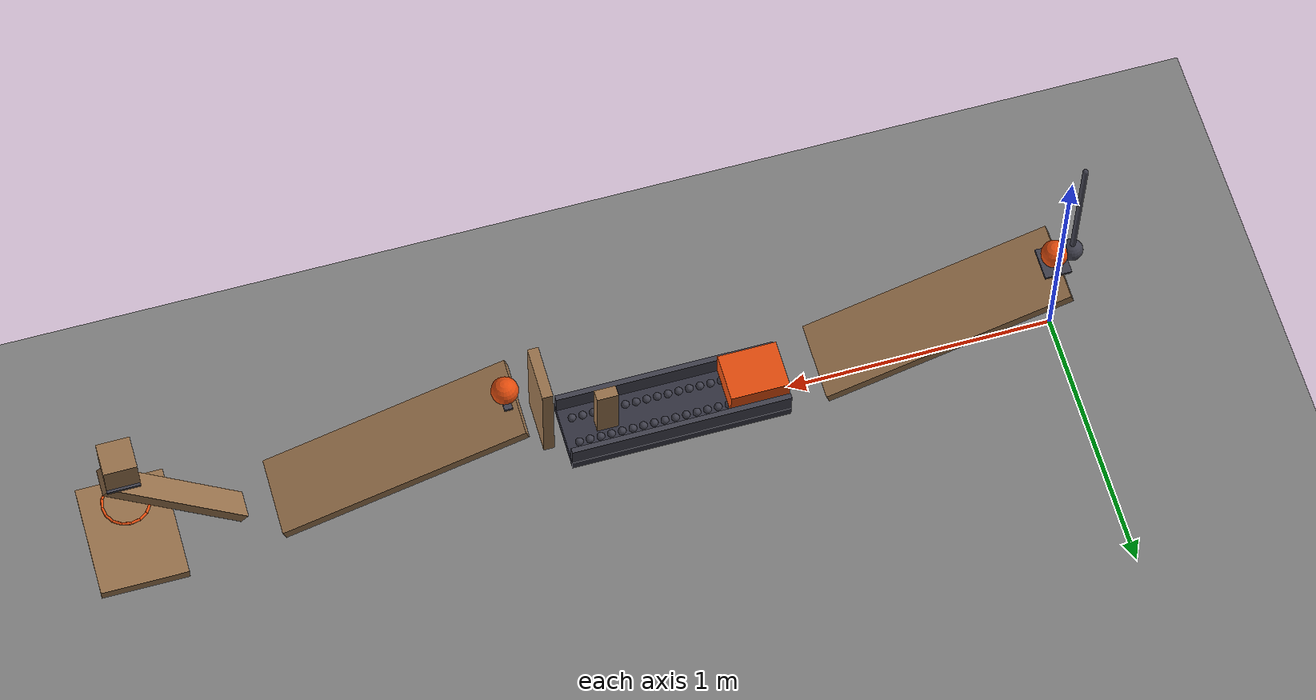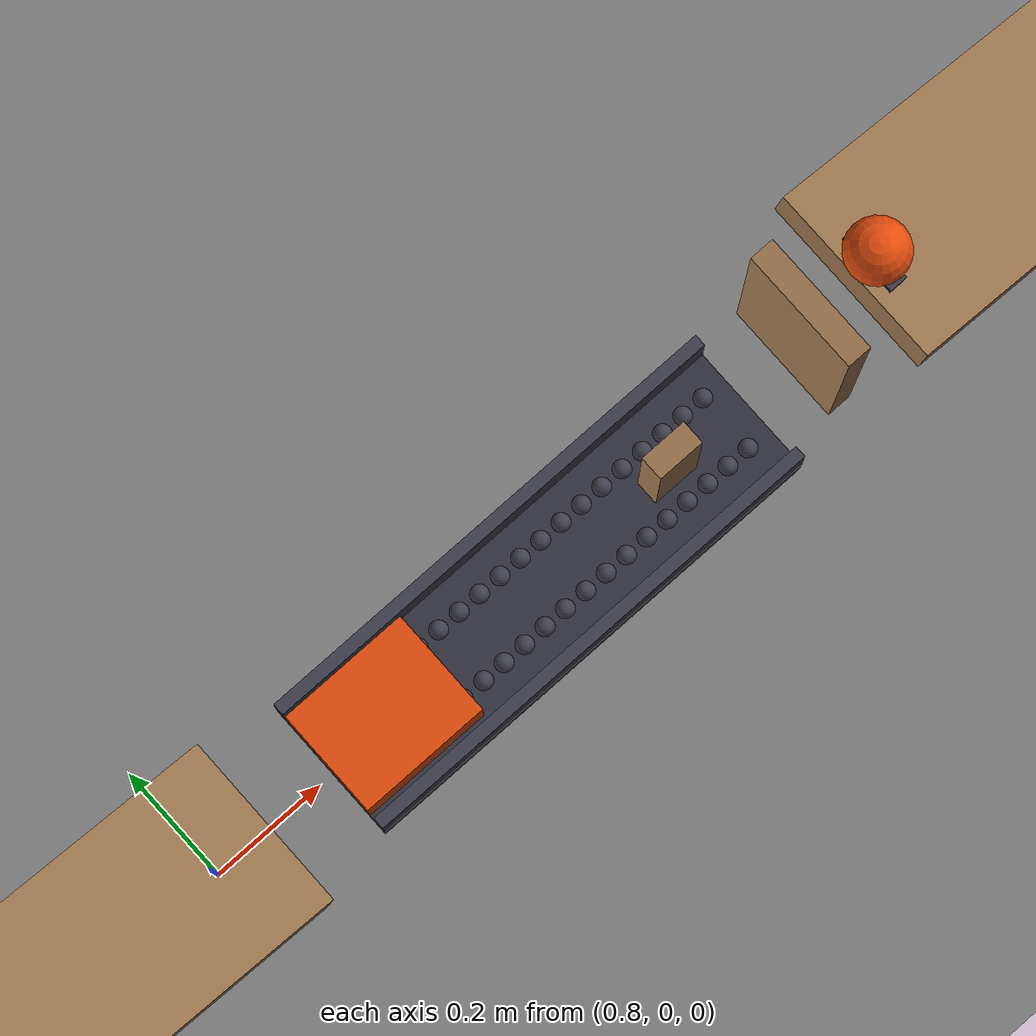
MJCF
<mujoco model="revised_gravity_chain">
  <compiler angle="radian"/>
  <option timestep="0.002"/>
  <worldbody>
    <geom name="floor" type="plane" size="12 12 0.1" friction="0.68 0 0"/>
    <body name="ramp1">
      <geom name="ramp1" type="box" pos="0.44912 0 0.285735" size="0.474999 0.15 0.02" euler="0 0.331614 0" friction="0.68 0 0" solref="0.01 1" rgba="0.6 0.45 0.3 1"/>
    </body>
    <body name="ball1 launch shelf">
      <geom name="ball1 launch shelf" type="box" pos="0.025 0 0.467" size="0.05 0.06 0.005" friction="0.68 0 0" solref="0.01 1" rgba="0.25 0.25 0.3 1"/>
    </body>
    <body name="ball1" pos="0.025 0 0.522">
      <freejoint/>
      <geom name="ball1" type="sphere" pos="0 0 0" size="0.05" mass="0.2" condim="6" friction="0.68 0 0" solref="0.01 1" rgba="0.9 0.3 0.05 1"/>
    </body>
    <body name="pendulum1" pos="-0.04 0 1.072">
      <joint name="pendulum1_hinge" type="hinge" pos="0 0 0" axis="0 1 0" limited="true" range="-1.13446 1.0472" damping="0.04"/>
      <geom name="pendulum1" type="sphere" pos="0 0 -0.55" size="0.04" mass="0.35" friction="0.68 0 0" solref="0.01 1" rgba="0.25 0.25 0.3 1"/>
      <geom name="pendulum rod" type="capsule" size="0.01" fromto="0 0 0 0 0 -0.51" mass="0.05" friction="0.68 0 0" solref="0.01 1" rgba="0.25 0.25 0.3 1"/>
    </body>
    <body name="cart track">
      <geom name="cart track" type="box" pos="1.43475 0 0.05" size="0.41 0.12 0.02" friction="0.68 0 0" solref="0.01 1" rgba="0.2 0.2 0.25 1"/>
    </body>
    <body name="cart left guide">
      <geom name="cart left guide" type="box" pos="1.43475 0.11 0.11" size="0.41 0.01 0.04" friction="0.68 0 0" solref="0.01 1" rgba="0.25 0.25 0.3 1"/>
    </body>
    <body name="cart right guide">
      <geom name="cart right guide" type="box" pos="1.43475 -0.11 0.11" size="0.41 0.01 0.04" friction="0.68 0 0" solref="0.01 1" rgba="0.25 0.25 0.3 1"/>
    </body>
    <body name="left roller1" pos="1.03975 0.05 0.085">
      <freejoint/>
      <geom name="left roller1" type="sphere" pos="0 0 0" size="0.015" mass="0.001" condim="6" friction="0.68 0 0" solref="0.01 1" rgba="0.25 0.25 0.3 1"/>
    </body>
    <body name="left roller2" pos="1.07975 0.05 0.085">
      <freejoint/>
      <geom name="left roller2" type="sphere" pos="0 0 0" size="0.015" mass="0.001" condim="6" friction="0.68 0 0" solref="0.01 1" rgba="0.25 0.25 0.3 1"/>
    </body>
    <body name="left roller3" pos="1.11975 0.05 0.085">
      <freejoint/>
      <geom name="left roller3" type="sphere" pos="0 0 0" size="0.015" mass="0.001" condim="6" friction="0.68 0 0" solref="0.01 1" rgba="0.25 0.25 0.3 1"/>
    </body>
    <body name="left roller4" pos="1.15975 0.05 0.085">
      <freejoint/>
      <geom name="left roller4" type="sphere" pos="0 0 0" size="0.015" mass="0.001" condim="6" friction="0.68 0 0" solref="0.01 1" rgba="0.25 0.25 0.3 1"/>
    </body>
    <body name="left roller5" pos="1.19975 0.05 0.085">
      <freejoint/>
      <geom name="left roller5" type="sphere" pos="0 0 0" size="0.015" mass="0.001" condim="6" friction="0.68 0 0" solref="0.01 1" rgba="0.25 0.25 0.3 1"/>
    </body>
    <body name="left roller6" pos="1.23975 0.05 0.085">
      <freejoint/>
      <geom name="left roller6" type="sphere" pos="0 0 0" size="0.015" mass="0.001" condim="6" friction="0.68 0 0" solref="0.01 1" rgba="0.25 0.25 0.3 1"/>
    </body>
    <body name="left roller7" pos="1.27975 0.05 0.085">
      <freejoint/>
      <geom name="left roller7" type="sphere" pos="0 0 0" size="0.015" mass="0.001" condim="6" friction="0.68 0 0" solref="0.01 1" rgba="0.25 0.25 0.3 1"/>
    </body>
    <body name="left roller8" pos="1.31975 0.05 0.085">
      <freejoint/>
      <geom name="left roller8" type="sphere" pos="0 0 0" size="0.015" mass="0.001" condim="6" friction="0.68 0 0" solref="0.01 1" rgba="0.25 0.25 0.3 1"/>
    </body>
    <body name="left roller9" pos="1.35975 0.05 0.085">
      <freejoint/>
      <geom name="left roller9" type="sphere" pos="0 0 0" size="0.015" mass="0.001" condim="6" friction="0.68 0 0" solref="0.01 1" rgba="0.25 0.25 0.3 1"/>
    </body>
    <body name="left roller10" pos="1.39975 0.05 0.085">
      <freejoint/>
      <geom name="left roller10" type="sphere" pos="0 0 0" size="0.015" mass="0.001" condim="6" friction="0.68 0 0" solref="0.01 1" rgba="0.25 0.25 0.3 1"/>
    </body>
    <body name="left roller11" pos="1.43975 0.05 0.085">
      <freejoint/>
      <geom name="left roller11" type="sphere" pos="0 0 0" size="0.015" mass="0.001" condim="6" friction="0.68 0 0" solref="0.01 1" rgba="0.25 0.25 0.3 1"/>
    </body>
    <body name="left roller12" pos="1.47975 0.05 0.085">
      <freejoint/>
      <geom name="left roller12" type="sphere" pos="0 0 0" size="0.015" mass="0.001" condim="6" friction="0.68 0 0" solref="0.01 1" rgba="0.25 0.25 0.3 1"/>
    </body>
    <body name="left roller13" pos="1.51975 0.05 0.085">
      <freejoint/>
      <geom name="left roller13" type="sphere" pos="0 0 0" size="0.015" mass="0.001" condim="6" friction="0.68 0 0" solref="0.01 1" rgba="0.25 0.25 0.3 1"/>
    </body>
    <body name="left roller14" pos="1.55975 0.05 0.085">
      <freejoint/>
      <geom name="left roller14" type="sphere" pos="0 0 0" size="0.015" mass="0.001" condim="6" friction="0.68 0 0" solref="0.01 1" rgba="0.25 0.25 0.3 1"/>
    </body>
    <body name="left roller15" pos="1.59975 0.05 0.085">
      <freejoint/>
      <geom name="left roller15" type="sphere" pos="0 0 0" size="0.015" mass="0.001" condim="6" friction="0.68 0 0" solref="0.01 1" rgba="0.25 0.25 0.3 1"/>
    </body>
    <body name="left roller16" pos="1.63975 0.05 0.085">
      <freejoint/>
      <geom name="left roller16" type="sphere" pos="0 0 0" size="0.015" mass="0.001" condim="6" friction="0.68 0 0" solref="0.01 1" rgba="0.25 0.25 0.3 1"/>
    </body>
    <body name="left roller17" pos="1.67975 0.05 0.085">
      <freejoint/>
      <geom name="left roller17" type="sphere" pos="0 0 0" size="0.015" mass="0.001" condim="6" friction="0.68 0 0" solref="0.01 1" rgba="0.25 0.25 0.3 1"/>
    </body>
    <body name="left roller18" pos="1.71975 0.05 0.085">
      <freejoint/>
      <geom name="left roller18" type="sphere" pos="0 0 0" size="0.015" mass="0.001" condim="6" friction="0.68 0 0" solref="0.01 1" rgba="0.25 0.25 0.3 1"/>
    </body>
    <body name="left roller19" pos="1.75975 0.05 0.085">
      <freejoint/>
      <geom name="left roller19" type="sphere" pos="0 0 0" size="0.015" mass="0.001" condim="6" friction="0.68 0 0" solref="0.01 1" rgba="0.25 0.25 0.3 1"/>
    </body>
    <body name="left roller20" pos="1.79975 0.05 0.085">
      <freejoint/>
      <geom name="left roller20" type="sphere" pos="0 0 0" size="0.015" mass="0.001" condim="6" friction="0.68 0 0" solref="0.01 1" rgba="0.25 0.25 0.3 1"/>
    </body>
    <body name="right roller1" pos="1.03975 -0.05 0.085">
      <freejoint/>
      <geom name="right roller1" type="sphere" pos="0 0 0" size="0.015" mass="0.001" condim="6" friction="0.68 0 0" solref="0.01 1" rgba="0.25 0.25 0.3 1"/>
    </body>
    <body name="right roller2" pos="1.07975 -0.05 0.085">
      <freejoint/>
      <geom name="right roller2" type="sphere" pos="0 0 0" size="0.015" mass="0.001" condim="6" friction="0.68 0 0" solref="0.01 1" rgba="0.25 0.25 0.3 1"/>
    </body>
    <body name="right roller3" pos="1.11975 -0.05 0.085">
      <freejoint/>
      <geom name="right roller3" type="sphere" pos="0 0 0" size="0.015" mass="0.001" condim="6" friction="0.68 0 0" solref="0.01 1" rgba="0.25 0.25 0.3 1"/>
    </body>
    <body name="right roller4" pos="1.15975 -0.05 0.085">
      <freejoint/>
      <geom name="right roller4" type="sphere" pos="0 0 0" size="0.015" mass="0.001" condim="6" friction="0.68 0 0" solref="0.01 1" rgba="0.25 0.25 0.3 1"/>
    </body>
    <body name="right roller5" pos="1.19975 -0.05 0.085">
      <freejoint/>
      <geom name="right roller5" type="sphere" pos="0 0 0" size="0.015" mass="0.001" condim="6" friction="0.68 0 0" solref="0.01 1" rgba="0.25 0.25 0.3 1"/>
    </body>
    <body name="right roller6" pos="1.23975 -0.05 0.085">
      <freejoint/>
      <geom name="right roller6" type="sphere" pos="0 0 0" size="0.015" mass="0.001" condim="6" friction="0.68 0 0" solref="0.01 1" rgba="0.25 0.25 0.3 1"/>
    </body>
    <body name="right roller7" pos="1.27975 -0.05 0.085">
      <freejoint/>
      <geom name="right roller7" type="sphere" pos="0 0 0" size="0.015" mass="0.001" condim="6" friction="0.68 0 0" solref="0.01 1" rgba="0.25 0.25 0.3 1"/>
    </body>
    <body name="right roller8" pos="1.31975 -0.05 0.085">
      <freejoint/>
      <geom name="right roller8" type="sphere" pos="0 0 0" size="0.015" mass="0.001" condim="6" friction="0.68 0 0" solref="0.01 1" rgba="0.25 0.25 0.3 1"/>
    </body>
    <body name="right roller9" pos="1.35975 -0.05 0.085">
      <freejoint/>
      <geom name="right roller9" type="sphere" pos="0 0 0" size="0.015" mass="0.001" condim="6" friction="0.68 0 0" solref="0.01 1" rgba="0.25 0.25 0.3 1"/>
    </body>
    <body name="right roller10" pos="1.39975 -0.05 0.085">
      <freejoint/>
      <geom name="right roller10" type="sphere" pos="0 0 0" size="0.015" mass="0.001" condim="6" friction="0.68 0 0" solref="0.01 1" rgba="0.25 0.25 0.3 1"/>
    </body>
    <body name="right roller11" pos="1.43975 -0.05 0.085">
      <freejoint/>
      <geom name="right roller11" type="sphere" pos="0 0 0" size="0.015" mass="0.001" condim="6" friction="0.68 0 0" solref="0.01 1" rgba="0.25 0.25 0.3 1"/>
    </body>
    <body name="right roller12" pos="1.47975 -0.05 0.085">
      <freejoint/>
      <geom name="right roller12" type="sphere" pos="0 0 0" size="0.015" mass="0.001" condim="6" friction="0.68 0 0" solref="0.01 1" rgba="0.25 0.25 0.3 1"/>
    </body>
    <body name="right roller13" pos="1.51975 -0.05 0.085">
      <freejoint/>
      <geom name="right roller13" type="sphere" pos="0 0 0" size="0.015" mass="0.001" condim="6" friction="0.68 0 0" solref="0.01 1" rgba="0.25 0.25 0.3 1"/>
    </body>
    <body name="right roller14" pos="1.55975 -0.05 0.085">
      <freejoint/>
      <geom name="right roller14" type="sphere" pos="0 0 0" size="0.015" mass="0.001" condim="6" friction="0.68 0 0" solref="0.01 1" rgba="0.25 0.25 0.3 1"/>
    </body>
    <body name="right roller15" pos="1.59975 -0.05 0.085">
      <freejoint/>
      <geom name="right roller15" type="sphere" pos="0 0 0" size="0.015" mass="0.001" condim="6" friction="0.68 0 0" solref="0.01 1" rgba="0.25 0.25 0.3 1"/>
    </body>
    <body name="right roller16" pos="1.63975 -0.05 0.085">
      <freejoint/>
      <geom name="right roller16" type="sphere" pos="0 0 0" size="0.015" mass="0.001" condim="6" friction="0.68 0 0" solref="0.01 1" rgba="0.25 0.25 0.3 1"/>
    </body>
    <body name="right roller17" pos="1.67975 -0.05 0.085">
      <freejoint/>
      <geom name="right roller17" type="sphere" pos="0 0 0" size="0.015" mass="0.001" condim="6" friction="0.68 0 0" solref="0.01 1" rgba="0.25 0.25 0.3 1"/>
    </body>
    <body name="right roller18" pos="1.71975 -0.05 0.085">
      <freejoint/>
      <geom name="right roller18" type="sphere" pos="0 0 0" size="0.015" mass="0.001" condim="6" friction="0.68 0 0" solref="0.01 1" rgba="0.25 0.25 0.3 1"/>
    </body>
    <body name="right roller19" pos="1.75975 -0.05 0.085">
      <freejoint/>
      <geom name="right roller19" type="sphere" pos="0 0 0" size="0.015" mass="0.001" condim="6" friction="0.68 0 0" solref="0.01 1" rgba="0.25 0.25 0.3 1"/>
    </body>
    <body name="right roller20" pos="1.79975 -0.05 0.085">
      <freejoint/>
      <geom name="right roller20" type="sphere" pos="0 0 0" size="0.015" mass="0.001" condim="6" friction="0.68 0 0" solref="0.01 1" rgba="0.25 0.25 0.3 1"/>
    </body>
    <body name="cart1" pos="1.13475 0 0.15">
      <freejoint/>
      <geom name="cart1" type="box" pos="0 0 0" size="0.11 0.09 0.05" mass="0.5" friction="0.68 0 0" solref="0.01 1" rgba="0.9 0.3 0.05 1"/>
    </body>
    <body name="domino1" pos="1.68475 0 0.19">
      <freejoint/>
      <geom name="domino1" type="box" pos="0 0 0" size="0.04 0.02 0.12" mass="0.25" friction="0.68 0 0" solref="0.01 1" rgba="0.6 0.45 0.3 1"/>
    </body>
    <body name="flap1" pos="1.92475 0 0.59">
      <joint name="flap1_hinge" type="hinge" pos="0 0 0" axis="0 1 0" limited="true" range="-1.13446 0" damping="0.04"/>
      <geom name="flap1" type="box" pos="0 0 -0.2" size="0.02 0.1 0.2" mass="0.3" friction="0.68 0 0" solref="0.01 1" rgba="0.6 0.45 0.3 1"/>
    </body>
    <body name="ramp2">
      <geom name="ramp2" type="box" pos="2.46216 0 0.285735" size="0.474999 0.15 0.02" euler="0 0.331614 0" friction="0.68 0 0" solref="0.01 1" rgba="0.6 0.45 0.3 1"/>
    </body>
    <body name="ball2 launch shelf" pos="2.06975 0 0.467">
      <joint name="ball2_shelf_hinge" type="hinge" pos="0 0 0" axis="0 1 0" limited="true" range="0 1.5708" damping="0.04"/>
      <geom name="ball2 launch shelf" type="box" pos="-0.015 0 0" size="0.015 0.05 0.005" mass="0.001" friction="0.68 0 0" solref="0.01 1" rgba="0.25 0.25 0.3 1"/>
    </body>
    <body name="ball2" pos="2.05475 0 0.522">
      <freejoint/>
      <geom name="ball2" type="sphere" pos="0 0 0" size="0.05" mass="0.2" condim="6" friction="0.68 0 0" solref="0.01 1" rgba="0.9 0.3 0.05 1"/>
    </body>
    <body name="seesaw1" pos="3.26174 0 0.36567">
      <joint name="seesaw1_hinge" type="hinge" pos="0 0 0" axis="0 1 0" limited="true" range="-0.698132 0" damping="0.04"/>
      <geom name="seesaw1" type="box" pos="0 0 0" size="0.325 0.05 0.02" euler="0 -0.785398 0" mass="0.55" friction="0.68 0 0" solref="0.01 1" rgba="0.6 0.45 0.3 1"/>
      <geom name="block seat" type="box" pos="0.16826 0 0.26154" size="0.06 0.07 0.005" mass="0.001" friction="0.68 0 0" solref="0.01 1" rgba="0.25 0.25 0.3 1"/>
    </body>
    <body name="block1" pos="3.43 0 0.69221">
      <freejoint/>
      <geom name="block1" type="box" pos="0 0 0" size="0.06 0.06 0.06" mass="0.35" friction="0.68 0 0" solref="0.01 1" rgba="0.6 0.45 0.3 1"/>
    </body>
    <body name="ring1">
      <geom name="ring1_00" type="capsule" size="0.005" fromto="3.515 0 0.39221 3.50853 0.0325281 0.39221" friction="0.68 0 0" solref="0.01 1" rgba="0.9 0.3 0.05 1"/>
      <geom name="ring1_01" type="capsule" size="0.005" fromto="3.50853 0.0325281 0.39221 3.4901 0.0601041 0.39221" friction="0.68 0 0" solref="0.01 1" rgba="0.9 0.3 0.05 1"/>
      <geom name="ring1_02" type="capsule" size="0.005" fromto="3.4901 0.0601041 0.39221 3.46253 0.0785298 0.39221" friction="0.68 0 0" solref="0.01 1" rgba="0.9 0.3 0.05 1"/>
      <geom name="ring1_03" type="capsule" size="0.005" fromto="3.46253 0.0785298 0.39221 3.43 0.085 0.39221" friction="0.68 0 0" solref="0.01 1" rgba="0.9 0.3 0.05 1"/>
      <geom name="ring1_04" type="capsule" size="0.005" fromto="3.43 0.085 0.39221 3.39747 0.0785298 0.39221" friction="0.68 0 0" solref="0.01 1" rgba="0.9 0.3 0.05 1"/>
      <geom name="ring1_05" type="capsule" size="0.005" fromto="3.39747 0.0785298 0.39221 3.3699 0.0601041 0.39221" friction="0.68 0 0" solref="0.01 1" rgba="0.9 0.3 0.05 1"/>
      <geom name="ring1_06" type="capsule" size="0.005" fromto="3.3699 0.0601041 0.39221 3.35147 0.0325281 0.39221" friction="0.68 0 0" solref="0.01 1" rgba="0.9 0.3 0.05 1"/>
      <geom name="ring1_07" type="capsule" size="0.005" fromto="3.35147 0.0325281 0.39221 3.345 1.04095e-17 0.39221" friction="0.68 0 0" solref="0.01 1" rgba="0.9 0.3 0.05 1"/>
      <geom name="ring1_08" type="capsule" size="0.005" fromto="3.345 1.04095e-17 0.39221 3.35147 -0.0325281 0.39221" friction="0.68 0 0" solref="0.01 1" rgba="0.9 0.3 0.05 1"/>
      <geom name="ring1_09" type="capsule" size="0.005" fromto="3.35147 -0.0325281 0.39221 3.3699 -0.0601041 0.39221" friction="0.68 0 0" solref="0.01 1" rgba="0.9 0.3 0.05 1"/>
      <geom name="ring1_10" type="capsule" size="0.005" fromto="3.3699 -0.0601041 0.39221 3.39747 -0.0785298 0.39221" friction="0.68 0 0" solref="0.01 1" rgba="0.9 0.3 0.05 1"/>
      <geom name="ring1_11" type="capsule" size="0.005" fromto="3.39747 -0.0785298 0.39221 3.43 -0.085 0.39221" friction="0.68 0 0" solref="0.01 1" rgba="0.9 0.3 0.05 1"/>
      <geom name="ring1_12" type="capsule" size="0.005" fromto="3.43 -0.085 0.39221 3.46253 -0.0785298 0.39221" friction="0.68 0 0" solref="0.01 1" rgba="0.9 0.3 0.05 1"/>
      <geom name="ring1_13" type="capsule" size="0.005" fromto="3.46253 -0.0785298 0.39221 3.4901 -0.0601041 0.39221" friction="0.68 0 0" solref="0.01 1" rgba="0.9 0.3 0.05 1"/>
      <geom name="ring1_14" type="capsule" size="0.005" fromto="3.4901 -0.0601041 0.39221 3.50853 -0.0325281 0.39221" friction="0.68 0 0" solref="0.01 1" rgba="0.9 0.3 0.05 1"/>
      <geom name="ring1_15" type="capsule" size="0.005" fromto="3.50853 -0.0325281 0.39221 3.515 -2.0819e-17 0.39221" friction="0.68 0 0" solref="0.01 1" rgba="0.9 0.3 0.05 1"/>
    </body>
    <body name="door1" pos="3.27 0 0.14221">
      <joint name="door1_hinge" type="hinge" pos="0 0 0" axis="0 1 0" limited="true" range="-1.13446 0" damping="0.04"/>
      <geom name="door1" type="box" pos="0.16 0 0" size="0.16 0.21 0.02" mass="0.45" friction="0.68 0 0" solref="0.01 1" rgba="0.6 0.45 0.3 1"/>
    </body>
  </worldbody>
  <keyframe>
    <key name="start" qpos="0.025 0 0.522 1 0 0 0 0.959931 1.03975 0.05 0.085 1 0 0 0 1.07975 0.05 0.085 1 0 0 0 1.11975 0.05 0.085 1 0 0 0 1.15975 0.05 0.085 1 0 0 0 1.19975 0.05 0.085 1 0 0 0 1.23975 0.05 0.085 1 0 0 0 1.27975 0.05 0.085 1 0 0 0 1.31975 0.05 0.085 1 0 0 0 1.35975 0.05 0.085 1 0 0 0 1.39975 0.05 0.085 1 0 0 0 1.43975 0.05 0.085 1 0 0 0 1.47975 0.05 0.085 1 0 0 0 1.51975 0.05 0.085 1 0 0 0 1.55975 0.05 0.085 1 0 0 0 1.59975 0.05 0.085 1 0 0 0 1.63975 0.05 0.085 1 0 0 0 1.67975 0.05 0.085 1 0 0 0 1.71975 0.05 0.085 1 0 0 0 1.75975 0.05 0.085 1 0 0 0 1.79975 0.05 0.085 1 0 0 0 1.03975 -0.05 0.085 1 0 0 0 1.07975 -0.05 0.085 1 0 0 0 1.11975 -0.05 0.085 1 0 0 0 1.15975 -0.05 0.085 1 0 0 0 1.19975 -0.05 0.085 1 0 0 0 1.23975 -0.05 0.085 1 0 0 0 1.27975 -0.05 0.085 1 0 0 0 1.31975 -0.05 0.085 1 0 0 0 1.35975 -0.05 0.085 1 0 0 0 1.39975 -0.05 0.085 1 0 0 0 1.43975 -0.05 0.085 1 0 0 0 1.47975 -0.05 0.085 1 0 0 0 1.51975 -0.05 0.085 1 0 0 0 1.55975 -0.05 0.085 1 0 0 0 1.59975 -0.05 0.085 1 0 0 0 1.63975 -0.05 0.085 1 0 0 0 1.67975 -0.05 0.085 1 0 0 0 1.71975 -0.05 0.085 1 0 0 0 1.75975 -0.05 0.085 1 0 0 0 1.79975 -0.05 0.085 1 0 0 0 1.13475 0 0.15 1 0 0 0 1.68475 0 0.19 1 0 0 0 0 0 2.05475 0 0.522 1 0 0 0 0 3.43 0 0.69221 1 0 0 0 0" qvel="0 0 0 0 0 0 0 0 0 0 0 0 0 0 0 0 0 0 0 0 0 0 0 0 0 0 0 0 0 0 0 0 0 0 0 0 0 0 0 0 0 0 0 0 0 0 0 0 0 0 0 0 0 0 0 0 0 0 0 0 0 0 0 0 0 0 0 0 0 0 0 0 0 0 0 0 0 0 0 0 0 0 0 0 0 0 0 0 0 0 0 0 0 0 0 0 0 0 0 0 0 0 0 0 0 0 0 0 0 0 0 0 0 0 0 0 0 0 0 0 0 0 0 0 0 0 0 0 0 0 0 0 0 0 0 0 0 0 0 0 0 0 0 0 0 0 0 0 0 0 0 0 0 0 0 0 0 0 0 0 0 0 0 0 0 0 0 0 0 0 0 0 0 0 0 0 0 0 0 0 0 0 0 0 0 0 0 0 0 0 0 0 0 0 0 0 0 0 0 0 0 0 0 0 0 0 0 0 0 0 0 0 0 0 0 0 0 0 0 0 0 0 0 0 0 0 0 0 0 0 0 0 0 0 0 0 0 0 0 0 0 0 0 0 0 0 0 0 0 0 0 0 0 0 0 0 0 0 0 0 0 0 0 0 0 0 0 0 0 0 0 0 0 0 0"/>
  </keyframe>
</mujoco>
